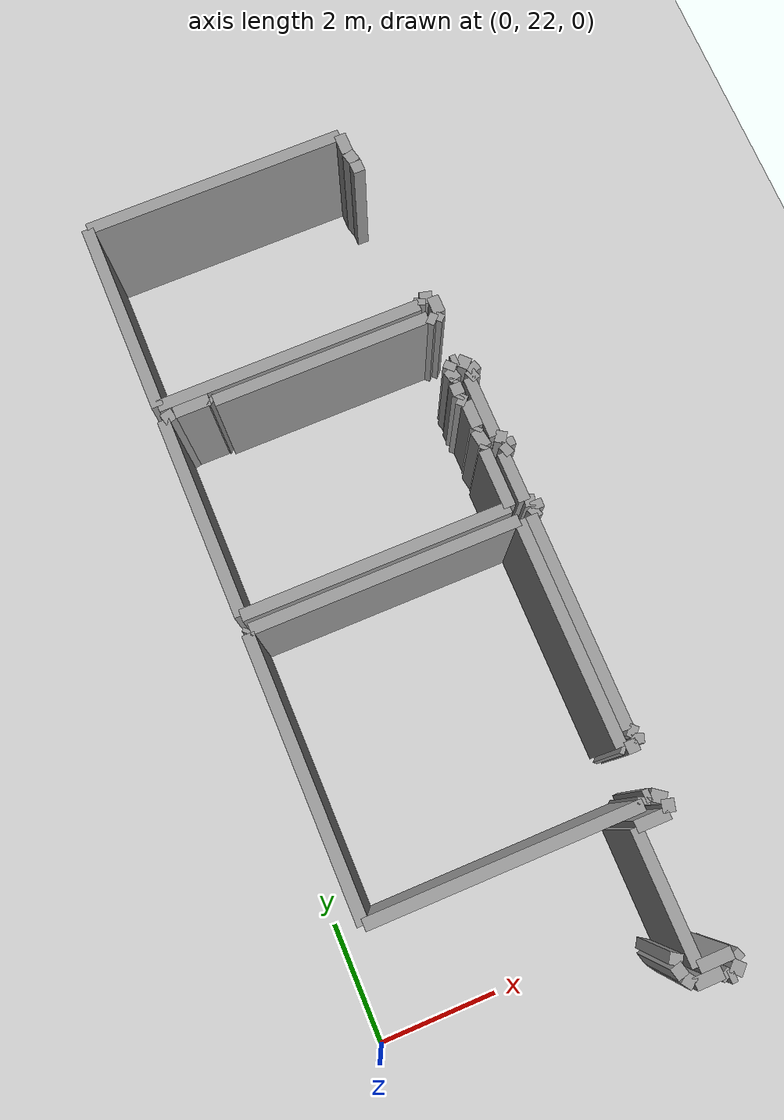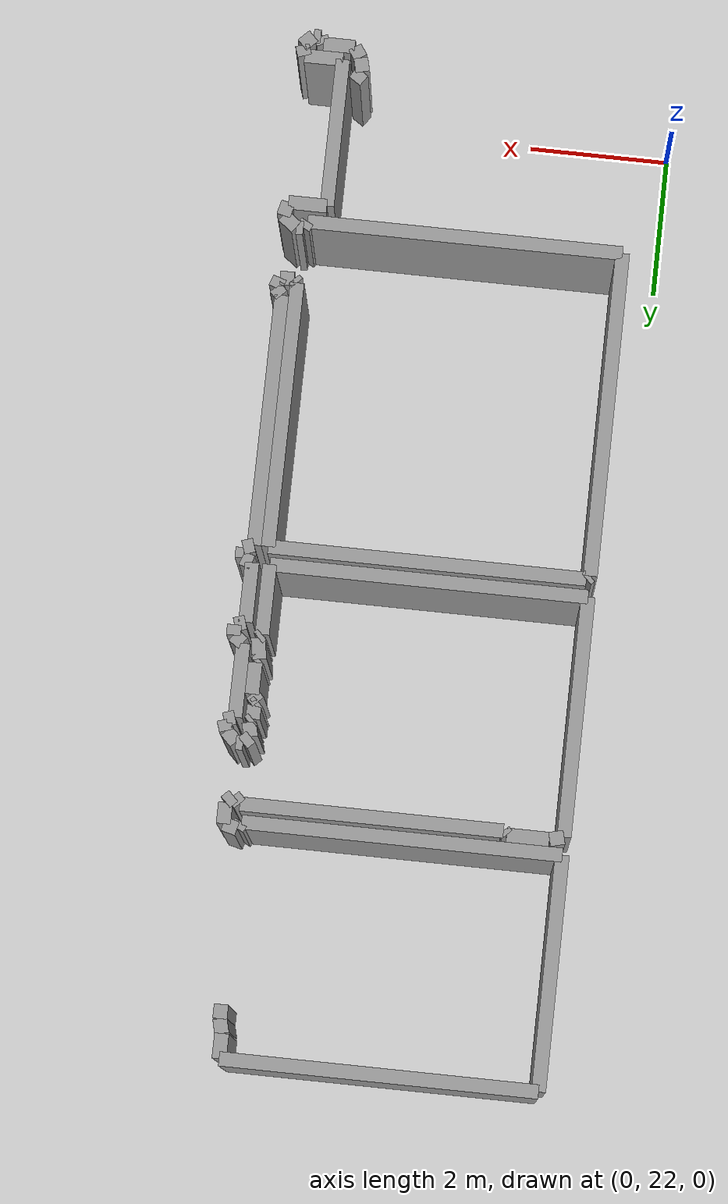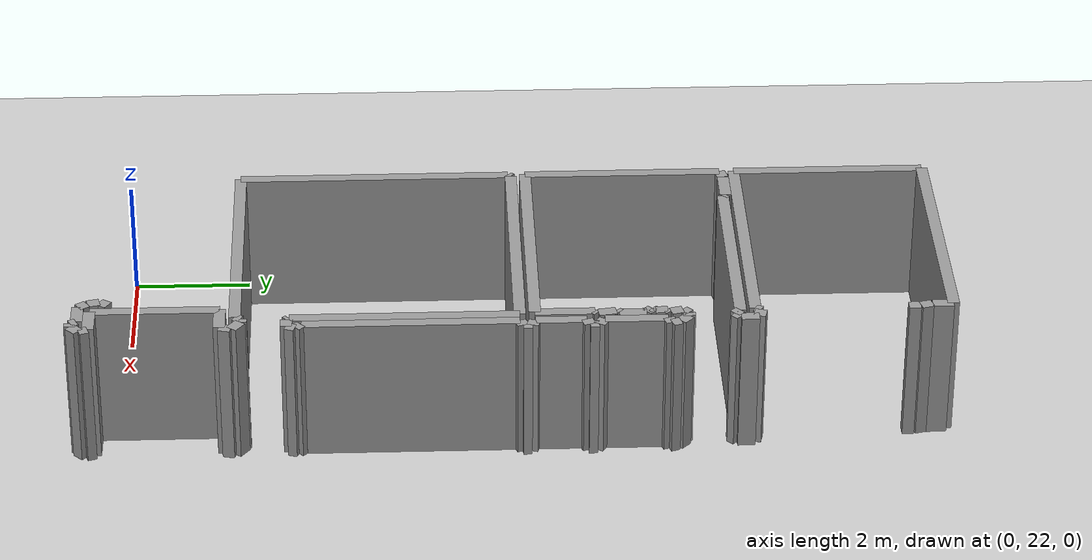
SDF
<sdf version="1.4">
 <world name="1_wall">
  <model name="ground_plane">
   <static>1</static>
   <link name="link">
    <collision name="collision">
     <geometry><plane><normal>0 0 1</normal><size>1000 1000</size></plane></geometry>
     <surface><friction><ode><mu>100</mu><mu2>50</mu2></ode></friction></surface>
    </collision>
    <visual name="visual">
     <cast_shadows>0</cast_shadows>
     <geometry><plane><normal>0 0 1</normal><size>10000 10000</size></plane></geometry>
     <material>
      <script><uri>file://media/materials/scripts/gazebo.material</uri><name>Gazebo/Grey</name></script>
     </material>
    </visual>
    <velocity_decay><linear>0</linear><angular>0</angular></velocity_decay>
   </link>
  </model>
  <model name="Wall_129">
   <static>1</static>
   <link name="Wall_129">
    <collision name="Wall_Collision_129">
     <geometry><box><size>0.180277563773 0.2 2.5</size></box></geometry>
     <pose>0 0 1.25 0 -0 0</pose>
    </collision>
    <visual name="Wall_Visual_129">
     <pose>0 0 1.25 0 -0 0</pose>
     <geometry><box><size>0.180277563773 0.2 2.5</size></box></geometry>
     <material>
      <script><uri>file://media/materials/scripts/gazebo.material</uri><name>Gazebo/Grey</name></script>
     </material>
    </visual>
    <velocity_decay><linear>0</linear><angular>0</angular></velocity_decay>
    <pose>4.55 21.775 0 0 0 -2.15879893034</pose>
   </link>
  </model>
  <model name="Wall_130">
   <static>1</static>
   <link name="Wall_130">
    <collision name="Wall_Collision_130">
     <geometry><box><size>0.206155281281 0.2 2.5</size></box></geometry>
     <pose>0 0 1.25 0 -0 0</pose>
    </collision>
    <visual name="Wall_Visual_130">
     <pose>0 0 1.25 0 -0 0</pose>
     <geometry><box><size>0.206155281281 0.2 2.5</size></box></geometry>
     <material>
      <script><uri>file://media/materials/scripts/gazebo.material</uri><name>Gazebo/Grey</name></script>
     </material>
    </visual>
    <velocity_decay><linear>0</linear><angular>0</angular></velocity_decay>
    <pose>4.525 21.6 0 0 0 -1.32581766367</pose>
   </link>
  </model>
  <model name="Wall_131">
   <static>1</static>
   <link name="Wall_131">
    <collision name="Wall_Collision_131">
     <geometry><box><size>0.180277563773 0.2 2.5</size></box></geometry>
     <pose>0 0 1.25 0 -0 0</pose>
    </collision>
    <visual name="Wall_Visual_131">
     <pose>0 0 1.25 0 -0 0</pose>
     <geometry><box><size>0.180277563773 0.2 2.5</size></box></geometry>
     <material>
      <script><uri>file://media/materials/scripts/gazebo.material</uri><name>Gazebo/Grey</name></script>
     </material>
    </visual>
    <velocity_decay><linear>0</linear><angular>0</angular></velocity_decay>
    <pose>4.6 21.425 0 0 0 -0.982793723247</pose>
   </link>
  </model>
  <model name="Wall_132">
   <static>1</static>
   <link name="Wall_132">
    <collision name="Wall_Collision_132">
     <geometry><box><size>0.45 0.2 2.5</size></box></geometry>
     <pose>0 0 1.25 0 -0 0</pose>
    </collision>
    <visual name="Wall_Visual_132">
     <pose>0 0 1.25 0 -0 0</pose>
     <geometry><box><size>0.45 0.2 2.5</size></box></geometry>
     <material>
      <script><uri>file://media/materials/scripts/gazebo.material</uri><name>Gazebo/Grey</name></script>
     </material>
    </visual>
    <velocity_decay><linear>0</linear><angular>0</angular></velocity_decay>
    <pose>4.875 21.35 0 0 0 0.0</pose>
   </link>
  </model>
  <model name="Wall_133">
   <static>1</static>
   <link name="Wall_133">
    <collision name="Wall_Collision_133">
     <geometry><box><size>0.111803398875 0.2 2.5</size></box></geometry>
     <pose>0 0 1.25 0 -0 0</pose>
    </collision>
    <visual name="Wall_Visual_133">
     <pose>0 0 1.25 0 -0 0</pose>
     <geometry><box><size>0.111803398875 0.2 2.5</size></box></geometry>
     <material>
      <script><uri>file://media/materials/scripts/gazebo.material</uri><name>Gazebo/Grey</name></script>
     </material>
    </visual>
    <velocity_decay><linear>0</linear><angular>0</angular></velocity_decay>
    <pose>5.125 21.3 0 0 0 -1.10714871779</pose>
   </link>
  </model>
  <model name="Wall_134">
   <static>1</static>
   <link name="Wall_134">
    <collision name="Wall_Collision_134">
     <geometry><box><size>0.1 0.2 2.5</size></box></geometry>
     <pose>0 0 1.25 0 -0 0</pose>
    </collision>
    <visual name="Wall_Visual_134">
     <pose>0 0 1.25 0 -0 0</pose>
     <geometry><box><size>0.1 0.2 2.5</size></box></geometry>
     <material>
      <script><uri>file://media/materials/scripts/gazebo.material</uri><name>Gazebo/Grey</name></script>
     </material>
    </visual>
    <velocity_decay><linear>0</linear><angular>0</angular></velocity_decay>
    <pose>5.2 21.25 0 0 0 0.0</pose>
   </link>
  </model>
  <model name="Wall_135">
   <static>1</static>
   <link name="Wall_135">
    <collision name="Wall_Collision_135">
     <geometry><box><size>0.212132034356 0.2 2.5</size></box></geometry>
     <pose>0 0 1.25 0 -0 0</pose>
    </collision>
    <visual name="Wall_Visual_135">
     <pose>0 0 1.25 0 -0 0</pose>
     <geometry><box><size>0.212132034356 0.2 2.5</size></box></geometry>
     <material>
      <script><uri>file://media/materials/scripts/gazebo.material</uri><name>Gazebo/Grey</name></script>
     </material>
    </visual>
    <velocity_decay><linear>0</linear><angular>0</angular></velocity_decay>
    <pose>5.325 21.325 0 0 0 0.785398163397</pose>
   </link>
  </model>
  <model name="Wall_136">
   <static>1</static>
   <link name="Wall_136">
    <collision name="Wall_Collision_136">
     <geometry><box><size>0.158113883008 0.2 2.5</size></box></geometry>
     <pose>0 0 1.25 0 -0 0</pose>
    </collision>
    <visual name="Wall_Visual_136">
     <pose>0 0 1.25 0 -0 0</pose>
     <geometry><box><size>0.158113883008 0.2 2.5</size></box></geometry>
     <material>
      <script><uri>file://media/materials/scripts/gazebo.material</uri><name>Gazebo/Grey</name></script>
     </material>
    </visual>
    <velocity_decay><linear>0</linear><angular>0</angular></velocity_decay>
    <pose>5.375 21.475 0 0 0 1.89254688119</pose>
   </link>
  </model>
  <model name="Wall_137">
   <static>1</static>
   <link name="Wall_137">
    <collision name="Wall_Collision_137">
     <geometry><box><size>0.55 0.2 2.5</size></box></geometry>
     <pose>0 0 1.25 0 -0 0</pose>
    </collision>
    <visual name="Wall_Visual_137">
     <pose>0 0 1.25 0 -0 0</pose>
     <geometry><box><size>0.55 0.2 2.5</size></box></geometry>
     <material>
      <script><uri>file://media/materials/scripts/gazebo.material</uri><name>Gazebo/Grey</name></script>
     </material>
    </visual>
    <velocity_decay><linear>0</linear><angular>0</angular></velocity_decay>
    <pose>5.075 21.55 0 0 0 3.14159265359</pose>
   </link>
  </model>
  <model name="Wall_138">
   <static>1</static>
   <link name="Wall_138">
    <collision name="Wall_Collision_138">
     <geometry><box><size>2.15 0.2 2.5</size></box></geometry>
     <pose>0 0 1.25 0 -0 0</pose>
    </collision>
    <visual name="Wall_Visual_138">
     <pose>0 0 1.25 0 -0 0</pose>
     <geometry><box><size>2.15 0.2 2.5</size></box></geometry>
     <material>
      <script><uri>file://media/materials/scripts/gazebo.material</uri><name>Gazebo/Grey</name></script>
     </material>
    </visual>
    <velocity_decay><linear>0</linear><angular>0</angular></velocity_decay>
    <pose>4.8 22.625 0 0 0 1.57079632679</pose>
   </link>
  </model>
  <model name="Wall_139">
   <static>1</static>
   <link name="Wall_139">
    <collision name="Wall_Collision_139">
     <geometry><box><size>0.55 0.2 2.5</size></box></geometry>
     <pose>0 0 1.25 0 -0 0</pose>
    </collision>
    <visual name="Wall_Visual_139">
     <pose>0 0 1.25 0 -0 0</pose>
     <geometry><box><size>0.55 0.2 2.5</size></box></geometry>
     <material>
      <script><uri>file://media/materials/scripts/gazebo.material</uri><name>Gazebo/Grey</name></script>
     </material>
    </visual>
    <velocity_decay><linear>0</linear><angular>0</angular></velocity_decay>
    <pose>5.075 23.7 0 0 0 0.0</pose>
   </link>
  </model>
  <model name="Wall_140">
   <static>1</static>
   <link name="Wall_140">
    <collision name="Wall_Collision_140">
     <geometry><box><size>0.206155281281 0.2 2.5</size></box></geometry>
     <pose>0 0 1.25 0 -0 0</pose>
    </collision>
    <visual name="Wall_Visual_140">
     <pose>0 0 1.25 0 -0 0</pose>
     <geometry><box><size>0.206155281281 0.2 2.5</size></box></geometry>
     <material>
      <script><uri>file://media/materials/scripts/gazebo.material</uri><name>Gazebo/Grey</name></script>
     </material>
    </visual>
    <velocity_decay><linear>0</linear><angular>0</angular></velocity_decay>
    <pose>5.375 23.8 0 0 0 1.32581766367</pose>
   </link>
  </model>
  <model name="Wall_141">
   <static>1</static>
   <link name="Wall_141">
    <collision name="Wall_Collision_141">
     <geometry><box><size>0.25 0.2 2.5</size></box></geometry>
     <pose>0 0 1.25 0 -0 0</pose>
    </collision>
    <visual name="Wall_Visual_141">
     <pose>0 0 1.25 0 -0 0</pose>
     <geometry><box><size>0.25 0.2 2.5</size></box></geometry>
     <material>
      <script><uri>file://media/materials/scripts/gazebo.material</uri><name>Gazebo/Grey</name></script>
     </material>
    </visual>
    <velocity_decay><linear>0</linear><angular>0</angular></velocity_decay>
    <pose>5.3 23.975 0 0 0 2.4980915448</pose>
   </link>
  </model>
  <model name="Wall_142">
   <static>1</static>
   <link name="Wall_142">
    <collision name="Wall_Collision_142">
     <geometry><box><size>0.1 0.2 2.5</size></box></geometry>
     <pose>0 0 1.25 0 -0 0</pose>
    </collision>
    <visual name="Wall_Visual_142">
     <pose>0 0 1.25 0 -0 0</pose>
     <geometry><box><size>0.1 0.2 2.5</size></box></geometry>
     <material>
      <script><uri>file://media/materials/scripts/gazebo.material</uri><name>Gazebo/Grey</name></script>
     </material>
    </visual>
    <velocity_decay><linear>0</linear><angular>0</angular></velocity_decay>
    <pose>5.15 24.05 0 0 0 3.14159265359</pose>
   </link>
  </model>
  <model name="Wall_143">
   <static>1</static>
   <link name="Wall_143">
    <collision name="Wall_Collision_143">
     <geometry><box><size>0.111803398875 0.2 2.5</size></box></geometry>
     <pose>0 0 1.25 0 -0 0</pose>
    </collision>
    <visual name="Wall_Visual_143">
     <pose>0 0 1.25 0 -0 0</pose>
     <geometry><box><size>0.111803398875 0.2 2.5</size></box></geometry>
     <material>
      <script><uri>file://media/materials/scripts/gazebo.material</uri><name>Gazebo/Grey</name></script>
     </material>
    </visual>
    <velocity_decay><linear>0</linear><angular>0</angular></velocity_decay>
    <pose>5.075 24.0 0 0 0 -2.0344439358</pose>
   </link>
  </model>
  <model name="Wall_144">
   <static>1</static>
   <link name="Wall_144">
    <collision name="Wall_Collision_144">
     <geometry><box><size>4.5 0.2 2.5</size></box></geometry>
     <pose>0 0 1.25 0 -0 0</pose>
    </collision>
    <visual name="Wall_Visual_144">
     <pose>0 0 1.25 0 -0 0</pose>
     <geometry><box><size>4.5 0.2 2.5</size></box></geometry>
     <material>
      <script><uri>file://media/materials/scripts/gazebo.material</uri><name>Gazebo/Grey</name></script>
     </material>
    </visual>
    <velocity_decay><linear>0</linear><angular>0</angular></velocity_decay>
    <pose>2.8 23.95 0 0 0 3.14159265359</pose>
   </link>
  </model>
  <model name="Wall_145">
   <static>1</static>
   <link name="Wall_145">
    <collision name="Wall_Collision_145">
     <geometry><box><size>4.65 0.2 2.5</size></box></geometry>
     <pose>0 0 1.25 0 -0 0</pose>
    </collision>
    <visual name="Wall_Visual_145">
     <pose>0 0 1.25 0 -0 0</pose>
     <geometry><box><size>4.65 0.2 2.5</size></box></geometry>
     <material>
      <script><uri>file://media/materials/scripts/gazebo.material</uri><name>Gazebo/Grey</name></script>
     </material>
    </visual>
    <velocity_decay><linear>0</linear><angular>0</angular></velocity_decay>
    <pose>0.55 26.275 0 0 0 1.57079632679</pose>
   </link>
  </model>
  <model name="Wall_146">
   <static>1</static>
   <link name="Wall_146">
    <collision name="Wall_Collision_146">
     <geometry><box><size>0.0707106781187 0.2 2.5</size></box></geometry>
     <pose>0 0 1.25 0 -0 0</pose>
    </collision>
    <visual name="Wall_Visual_146">
     <pose>0 0 1.25 0 -0 0</pose>
     <geometry><box><size>0.0707106781187 0.2 2.5</size></box></geometry>
     <material>
      <script><uri>file://media/materials/scripts/gazebo.material</uri><name>Gazebo/Grey</name></script>
     </material>
    </visual>
    <velocity_decay><linear>0</linear><angular>0</angular></velocity_decay>
    <pose>0.575 28.625 0 0 0 0.785398163397</pose>
   </link>
  </model>
  <model name="Wall_147">
   <static>1</static>
   <link name="Wall_147">
    <collision name="Wall_Collision_147">
     <geometry><box><size>4.5 0.2 2.5</size></box></geometry>
     <pose>0 0 1.25 0 -0 0</pose>
    </collision>
    <visual name="Wall_Visual_147">
     <pose>0 0 1.25 0 -0 0</pose>
     <geometry><box><size>4.5 0.2 2.5</size></box></geometry>
     <material>
      <script><uri>file://media/materials/scripts/gazebo.material</uri><name>Gazebo/Grey</name></script>
     </material>
    </visual>
    <velocity_decay><linear>0</linear><angular>0</angular></velocity_decay>
    <pose>2.85 28.65 0 0 0 0.0</pose>
   </link>
  </model>
  <model name="Wall_148">
   <static>1</static>
   <link name="Wall_148">
    <collision name="Wall_Collision_148">
     <geometry><box><size>3.8 0.2 2.5</size></box></geometry>
     <pose>0 0 1.25 0 -0 0</pose>
    </collision>
    <visual name="Wall_Visual_148">
     <pose>0 0 1.25 0 -0 0</pose>
     <geometry><box><size>3.8 0.2 2.5</size></box></geometry>
     <material>
      <script><uri>file://media/materials/scripts/gazebo.material</uri><name>Gazebo/Grey</name></script>
     </material>
    </visual>
    <velocity_decay><linear>0</linear><angular>0</angular></velocity_decay>
    <pose>5.1 26.75 0 0 0 -1.57079632679</pose>
   </link>
  </model>
  <model name="Wall_149">
   <static>1</static>
   <link name="Wall_149">
    <collision name="Wall_Collision_149">
     <geometry><box><size>0.0707106781187 0.2 2.5</size></box></geometry>
     <pose>0 0 1.25 0 -0 0</pose>
    </collision>
    <visual name="Wall_Visual_149">
     <pose>0 0 1.25 0 -0 0</pose>
     <geometry><box><size>0.0707106781187 0.2 2.5</size></box></geometry>
     <material>
      <script><uri>file://media/materials/scripts/gazebo.material</uri><name>Gazebo/Grey</name></script>
     </material>
    </visual>
    <velocity_decay><linear>0</linear><angular>0</angular></velocity_decay>
    <pose>5.125 24.825 0 0 0 -0.785398163397</pose>
   </link>
  </model>
  <model name="Wall_150">
   <static>1</static>
   <link name="Wall_150">
    <collision name="Wall_Collision_150">
     <geometry><box><size>0.2 0.2 2.5</size></box></geometry>
     <pose>0 0 1.25 0 -0 0</pose>
    </collision>
    <visual name="Wall_Visual_150">
     <pose>0 0 1.25 0 -0 0</pose>
     <geometry><box><size>0.2 0.2 2.5</size></box></geometry>
     <material>
      <script><uri>file://media/materials/scripts/gazebo.material</uri><name>Gazebo/Grey</name></script>
     </material>
    </visual>
    <velocity_decay><linear>0</linear><angular>0</angular></velocity_decay>
    <pose>5.25 24.8 0 0 0 0.0</pose>
   </link>
  </model>
  <model name="Wall_151">
   <static>1</static>
   <link name="Wall_151">
    <collision name="Wall_Collision_151">
     <geometry><box><size>0.158113883008 0.2 2.5</size></box></geometry>
     <pose>0 0 1.25 0 -0 0</pose>
    </collision>
    <visual name="Wall_Visual_151">
     <pose>0 0 1.25 0 -0 0</pose>
     <geometry><box><size>0.158113883008 0.2 2.5</size></box></geometry>
     <material>
      <script><uri>file://media/materials/scripts/gazebo.material</uri><name>Gazebo/Grey</name></script>
     </material>
    </visual>
    <velocity_decay><linear>0</linear><angular>0</angular></velocity_decay>
    <pose>5.375 24.875 0 0 0 1.2490457724</pose>
   </link>
  </model>
  <model name="Wall_152">
   <static>1</static>
   <link name="Wall_152">
    <collision name="Wall_Collision_152">
     <geometry><box><size>0.141421356237 0.2 2.5</size></box></geometry>
     <pose>0 0 1.25 0 -0 0</pose>
    </collision>
    <visual name="Wall_Visual_152">
     <pose>0 0 1.25 0 -0 0</pose>
     <geometry><box><size>0.141421356237 0.2 2.5</size></box></geometry>
     <material>
      <script><uri>file://media/materials/scripts/gazebo.material</uri><name>Gazebo/Grey</name></script>
     </material>
    </visual>
    <velocity_decay><linear>0</linear><angular>0</angular></velocity_decay>
    <pose>5.35 25.0 0 0 0 2.35619449019</pose>
   </link>
  </model>
  <model name="Wall_153">
   <static>1</static>
   <link name="Wall_153">
    <collision name="Wall_Collision_153">
     <geometry><box><size>3.6 0.2 2.5</size></box></geometry>
     <pose>0 0 1.25 0 -0 0</pose>
    </collision>
    <visual name="Wall_Visual_153">
     <pose>0 0 1.25 0 -0 0</pose>
     <geometry><box><size>3.6 0.2 2.5</size></box></geometry>
     <material>
      <script><uri>file://media/materials/scripts/gazebo.material</uri><name>Gazebo/Grey</name></script>
     </material>
    </visual>
    <velocity_decay><linear>0</linear><angular>0</angular></velocity_decay>
    <pose>5.3 26.85 0 0 0 1.57079632679</pose>
   </link>
  </model>
  <model name="Wall_154">
   <static>1</static>
   <link name="Wall_154">
    <collision name="Wall_Collision_154">
     <geometry><box><size>0.158113883008 0.2 2.5</size></box></geometry>
     <pose>0 0 1.25 0 -0 0</pose>
    </collision>
    <visual name="Wall_Visual_154">
     <pose>0 0 1.25 0 -0 0</pose>
     <geometry><box><size>0.158113883008 0.2 2.5</size></box></geometry>
     <material>
      <script><uri>file://media/materials/scripts/gazebo.material</uri><name>Gazebo/Grey</name></script>
     </material>
    </visual>
    <velocity_decay><linear>0</linear><angular>0</angular></velocity_decay>
    <pose>5.375 28.675 0 0 0 0.321750554397</pose>
   </link>
  </model>
  <model name="Wall_155">
   <static>1</static>
   <link name="Wall_155">
    <collision name="Wall_Collision_155">
     <geometry><box><size>0.15 0.2 2.5</size></box></geometry>
     <pose>0 0 1.25 0 -0 0</pose>
    </collision>
    <visual name="Wall_Visual_155">
     <pose>0 0 1.25 0 -0 0</pose>
     <geometry><box><size>0.15 0.2 2.5</size></box></geometry>
     <material>
      <script><uri>file://media/materials/scripts/gazebo.material</uri><name>Gazebo/Grey</name></script>
     </material>
    </visual>
    <velocity_decay><linear>0</linear><angular>0</angular></velocity_decay>
    <pose>5.45 28.775 0 0 0 1.57079632679</pose>
   </link>
  </model>
  <model name="Wall_156">
   <static>1</static>
   <link name="Wall_156">
    <collision name="Wall_Collision_156">
     <geometry><box><size>0.158113883008 0.2 2.5</size></box></geometry>
     <pose>0 0 1.25 0 -0 0</pose>
    </collision>
    <visual name="Wall_Visual_156">
     <pose>0 0 1.25 0 -0 0</pose>
     <geometry><box><size>0.158113883008 0.2 2.5</size></box></geometry>
     <material>
      <script><uri>file://media/materials/scripts/gazebo.material</uri><name>Gazebo/Grey</name></script>
     </material>
    </visual>
    <velocity_decay><linear>0</linear><angular>0</angular></velocity_decay>
    <pose>5.375 28.875 0 0 0 2.81984209919</pose>
   </link>
  </model>
  <model name="Wall_157">
   <static>1</static>
   <link name="Wall_157">
    <collision name="Wall_Collision_157">
     <geometry><box><size>0.85 0.2 2.5</size></box></geometry>
     <pose>0 0 1.25 0 -0 0</pose>
    </collision>
    <visual name="Wall_Visual_157">
     <pose>0 0 1.25 0 -0 0</pose>
     <geometry><box><size>0.85 0.2 2.5</size></box></geometry>
     <material>
      <script><uri>file://media/materials/scripts/gazebo.material</uri><name>Gazebo/Grey</name></script>
     </material>
    </visual>
    <velocity_decay><linear>0</linear><angular>0</angular></velocity_decay>
    <pose>5.3 29.325 0 0 0 1.57079632679</pose>
   </link>
  </model>
  <model name="Wall_158">
   <static>1</static>
   <link name="Wall_158">
    <collision name="Wall_Collision_158">
     <geometry><box><size>0.158113883008 0.2 2.5</size></box></geometry>
     <pose>0 0 1.25 0 -0 0</pose>
    </collision>
    <visual name="Wall_Visual_158">
     <pose>0 0 1.25 0 -0 0</pose>
     <geometry><box><size>0.158113883008 0.2 2.5</size></box></geometry>
     <material>
      <script><uri>file://media/materials/scripts/gazebo.material</uri><name>Gazebo/Grey</name></script>
     </material>
    </visual>
    <velocity_decay><linear>0</linear><angular>0</angular></velocity_decay>
    <pose>5.375 29.775 0 0 0 0.321750554397</pose>
   </link>
  </model>
  <model name="Wall_159">
   <static>1</static>
   <link name="Wall_159">
    <collision name="Wall_Collision_159">
     <geometry><box><size>0.15 0.2 2.5</size></box></geometry>
     <pose>0 0 1.25 0 -0 0</pose>
    </collision>
    <visual name="Wall_Visual_159">
     <pose>0 0 1.25 0 -0 0</pose>
     <geometry><box><size>0.15 0.2 2.5</size></box></geometry>
     <material>
      <script><uri>file://media/materials/scripts/gazebo.material</uri><name>Gazebo/Grey</name></script>
     </material>
    </visual>
    <velocity_decay><linear>0</linear><angular>0</angular></velocity_decay>
    <pose>5.45 29.875 0 0 0 1.57079632679</pose>
   </link>
  </model>
  <model name="Wall_160">
   <static>1</static>
   <link name="Wall_160">
    <collision name="Wall_Collision_160">
     <geometry><box><size>0.180277563773 0.2 2.5</size></box></geometry>
     <pose>0 0 1.25 0 -0 0</pose>
    </collision>
    <visual name="Wall_Visual_160">
     <pose>0 0 1.25 0 -0 0</pose>
     <geometry><box><size>0.180277563773 0.2 2.5</size></box></geometry>
     <material>
      <script><uri>file://media/materials/scripts/gazebo.material</uri><name>Gazebo/Grey</name></script>
     </material>
    </visual>
    <velocity_decay><linear>0</linear><angular>0</angular></velocity_decay>
    <pose>5.375 30.0 0 0 0 2.55359005004</pose>
   </link>
  </model>
  <model name="Wall_161">
   <static>1</static>
   <link name="Wall_161">
    <collision name="Wall_Collision_161">
     <geometry><box><size>1.05 0.2 2.5</size></box></geometry>
     <pose>0 0 1.25 0 -0 0</pose>
    </collision>
    <visual name="Wall_Visual_161">
     <pose>0 0 1.25 0 -0 0</pose>
     <geometry><box><size>1.05 0.2 2.5</size></box></geometry>
     <material>
      <script><uri>file://media/materials/scripts/gazebo.material</uri><name>Gazebo/Grey</name></script>
     </material>
    </visual>
    <velocity_decay><linear>0</linear><angular>0</angular></velocity_decay>
    <pose>5.3 30.575 0 0 0 1.57079632679</pose>
   </link>
  </model>
  <model name="Wall_162">
   <static>1</static>
   <link name="Wall_162">
    <collision name="Wall_Collision_162">
     <geometry><box><size>0.158113883008 0.2 2.5</size></box></geometry>
     <pose>0 0 1.25 0 -0 0</pose>
    </collision>
    <visual name="Wall_Visual_162">
     <pose>0 0 1.25 0 -0 0</pose>
     <geometry><box><size>0.158113883008 0.2 2.5</size></box></geometry>
     <material>
      <script><uri>file://media/materials/scripts/gazebo.material</uri><name>Gazebo/Grey</name></script>
     </material>
    </visual>
    <velocity_decay><linear>0</linear><angular>0</angular></velocity_decay>
    <pose>5.375 31.125 0 0 0 0.321750554397</pose>
   </link>
  </model>
  <model name="Wall_163">
   <static>1</static>
   <link name="Wall_163">
    <collision name="Wall_Collision_163">
     <geometry><box><size>0.158113883008 0.2 2.5</size></box></geometry>
     <pose>0 0 1.25 0 -0 0</pose>
    </collision>
    <visual name="Wall_Visual_163">
     <pose>0 0 1.25 0 -0 0</pose>
     <geometry><box><size>0.158113883008 0.2 2.5</size></box></geometry>
     <material>
      <script><uri>file://media/materials/scripts/gazebo.material</uri><name>Gazebo/Grey</name></script>
     </material>
    </visual>
    <velocity_decay><linear>0</linear><angular>0</angular></velocity_decay>
    <pose>5.425 31.225 0 0 0 1.89254688119</pose>
   </link>
  </model>
  <model name="Wall_164">
   <static>1</static>
   <link name="Wall_164">
    <collision name="Wall_Collision_164">
     <geometry><box><size>0.212132034356 0.2 2.5</size></box></geometry>
     <pose>0 0 1.25 0 -0 0</pose>
    </collision>
    <visual name="Wall_Visual_164">
     <pose>0 0 1.25 0 -0 0</pose>
     <geometry><box><size>0.212132034356 0.2 2.5</size></box></geometry>
     <material>
      <script><uri>file://media/materials/scripts/gazebo.material</uri><name>Gazebo/Grey</name></script>
     </material>
    </visual>
    <velocity_decay><linear>0</linear><angular>0</angular></velocity_decay>
    <pose>5.325 31.375 0 0 0 2.35619449019</pose>
   </link>
  </model>
  <model name="Wall_165">
   <static>1</static>
   <link name="Wall_165">
    <collision name="Wall_Collision_165">
     <geometry><box><size>0.1 0.2 2.5</size></box></geometry>
     <pose>0 0 1.25 0 -0 0</pose>
    </collision>
    <visual name="Wall_Visual_165">
     <pose>0 0 1.25 0 -0 0</pose>
     <geometry><box><size>0.1 0.2 2.5</size></box></geometry>
     <material>
      <script><uri>file://media/materials/scripts/gazebo.material</uri><name>Gazebo/Grey</name></script>
     </material>
    </visual>
    <velocity_decay><linear>0</linear><angular>0</angular></velocity_decay>
    <pose>5.2 31.45 0 0 0 3.14159265359</pose>
   </link>
  </model>
  <model name="Wall_166">
   <static>1</static>
   <link name="Wall_166">
    <collision name="Wall_Collision_166">
     <geometry><box><size>0.141421356237 0.2 2.5</size></box></geometry>
     <pose>0 0 1.25 0 -0 0</pose>
    </collision>
    <visual name="Wall_Visual_166">
     <pose>0 0 1.25 0 -0 0</pose>
     <geometry><box><size>0.141421356237 0.2 2.5</size></box></geometry>
     <material>
      <script><uri>file://media/materials/scripts/gazebo.material</uri><name>Gazebo/Grey</name></script>
     </material>
    </visual>
    <velocity_decay><linear>0</linear><angular>0</angular></velocity_decay>
    <pose>5.1 31.4 0 0 0 -2.35619449019</pose>
   </link>
  </model>
  <model name="Wall_167">
   <static>1</static>
   <link name="Wall_167">
    <collision name="Wall_Collision_167">
     <geometry><box><size>0.206155281281 0.2 2.5</size></box></geometry>
     <pose>0 0 1.25 0 -0 0</pose>
    </collision>
    <visual name="Wall_Visual_167">
     <pose>0 0 1.25 0 -0 0</pose>
     <geometry><box><size>0.206155281281 0.2 2.5</size></box></geometry>
     <material>
      <script><uri>file://media/materials/scripts/gazebo.material</uri><name>Gazebo/Grey</name></script>
     </material>
    </visual>
    <velocity_decay><linear>0</linear><angular>0</angular></velocity_decay>
    <pose>5.075 31.25 0 0 0 -1.32581766367</pose>
   </link>
  </model>
  <model name="Wall_168">
   <static>1</static>
   <link name="Wall_168">
    <collision name="Wall_Collision_168">
     <geometry><box><size>0.0707106781187 0.2 2.5</size></box></geometry>
     <pose>0 0 1.25 0 -0 0</pose>
    </collision>
    <visual name="Wall_Visual_168">
     <pose>0 0 1.25 0 -0 0</pose>
     <geometry><box><size>0.0707106781187 0.2 2.5</size></box></geometry>
     <material>
      <script><uri>file://media/materials/scripts/gazebo.material</uri><name>Gazebo/Grey</name></script>
     </material>
    </visual>
    <velocity_decay><linear>0</linear><angular>0</angular></velocity_decay>
    <pose>5.075 31.125 0 0 0 -2.35619449019</pose>
   </link>
  </model>
  <model name="Wall_169">
   <static>1</static>
   <link name="Wall_169">
    <collision name="Wall_Collision_169">
     <geometry><box><size>0.2 0.2 2.5</size></box></geometry>
     <pose>0 0 1.25 0 -0 0</pose>
    </collision>
    <visual name="Wall_Visual_169">
     <pose>0 0 1.25 0 -0 0</pose>
     <geometry><box><size>0.2 0.2 2.5</size></box></geometry>
     <material>
      <script><uri>file://media/materials/scripts/gazebo.material</uri><name>Gazebo/Grey</name></script>
     </material>
    </visual>
    <velocity_decay><linear>0</linear><angular>0</angular></velocity_decay>
    <pose>5.05 31.0 0 0 0 -1.57079632679</pose>
   </link>
  </model>
  <model name="Wall_170">
   <static>1</static>
   <link name="Wall_170">
    <collision name="Wall_Collision_170">
     <geometry><box><size>0.0707106781187 0.2 2.5</size></box></geometry>
     <pose>0 0 1.25 0 -0 0</pose>
    </collision>
    <visual name="Wall_Visual_170">
     <pose>0 0 1.25 0 -0 0</pose>
     <geometry><box><size>0.0707106781187 0.2 2.5</size></box></geometry>
     <material>
      <script><uri>file://media/materials/scripts/gazebo.material</uri><name>Gazebo/Grey</name></script>
     </material>
    </visual>
    <velocity_decay><linear>0</linear><angular>0</angular></velocity_decay>
    <pose>5.025 30.875 0 0 0 -2.35619449019</pose>
   </link>
  </model>
  <model name="Wall_171">
   <static>1</static>
   <link name="Wall_171">
    <collision name="Wall_Collision_171">
     <geometry><box><size>0.141421356237 0.2 2.5</size></box></geometry>
     <pose>0 0 1.25 0 -0 0</pose>
    </collision>
    <visual name="Wall_Visual_171">
     <pose>0 0 1.25 0 -0 0</pose>
     <geometry><box><size>0.141421356237 0.2 2.5</size></box></geometry>
     <material>
      <script><uri>file://media/materials/scripts/gazebo.material</uri><name>Gazebo/Grey</name></script>
     </material>
    </visual>
    <velocity_decay><linear>0</linear><angular>0</angular></velocity_decay>
    <pose>5.05 30.8 0 0 0 -0.785398163397</pose>
   </link>
  </model>
  <model name="Wall_172">
   <static>1</static>
   <link name="Wall_172">
    <collision name="Wall_Collision_172">
     <geometry><box><size>0.45 0.2 2.5</size></box></geometry>
     <pose>0 0 1.25 0 -0 0</pose>
    </collision>
    <visual name="Wall_Visual_172">
     <pose>0 0 1.25 0 -0 0</pose>
     <geometry><box><size>0.45 0.2 2.5</size></box></geometry>
     <material>
      <script><uri>file://media/materials/scripts/gazebo.material</uri><name>Gazebo/Grey</name></script>
     </material>
    </visual>
    <velocity_decay><linear>0</linear><angular>0</angular></velocity_decay>
    <pose>5.1 30.525 0 0 0 -1.57079632679</pose>
   </link>
  </model>
  <model name="Wall_173">
   <static>1</static>
   <link name="Wall_173">
    <collision name="Wall_Collision_173">
     <geometry><box><size>0.0707106781187 0.2 2.5</size></box></geometry>
     <pose>0 0 1.25 0 -0 0</pose>
    </collision>
    <visual name="Wall_Visual_173">
     <pose>0 0 1.25 0 -0 0</pose>
     <geometry><box><size>0.0707106781187 0.2 2.5</size></box></geometry>
     <material>
      <script><uri>file://media/materials/scripts/gazebo.material</uri><name>Gazebo/Grey</name></script>
     </material>
    </visual>
    <velocity_decay><linear>0</linear><angular>0</angular></velocity_decay>
    <pose>5.075 30.275 0 0 0 -2.35619449019</pose>
   </link>
  </model>
  <model name="Wall_174">
   <static>1</static>
   <link name="Wall_174">
    <collision name="Wall_Collision_174">
     <geometry><box><size>0.304138126515 0.2 2.5</size></box></geometry>
     <pose>0 0 1.25 0 -0 0</pose>
    </collision>
    <visual name="Wall_Visual_174">
     <pose>0 0 1.25 0 -0 0</pose>
     <geometry><box><size>0.304138126515 0.2 2.5</size></box></geometry>
     <material>
      <script><uri>file://media/materials/scripts/gazebo.material</uri><name>Gazebo/Grey</name></script>
     </material>
    </visual>
    <velocity_decay><linear>0</linear><angular>0</angular></velocity_decay>
    <pose>5.075 30.1 0 0 0 -1.40564764938</pose>
   </link>
  </model>
  <model name="Wall_175">
   <static>1</static>
   <link name="Wall_175">
    <collision name="Wall_Collision_175">
     <geometry><box><size>0.0707106781187 0.2 2.5</size></box></geometry>
     <pose>0 0 1.25 0 -0 0</pose>
    </collision>
    <visual name="Wall_Visual_175">
     <pose>0 0 1.25 0 -0 0</pose>
     <geometry><box><size>0.0707106781187 0.2 2.5</size></box></geometry>
     <material>
      <script><uri>file://media/materials/scripts/gazebo.material</uri><name>Gazebo/Grey</name></script>
     </material>
    </visual>
    <velocity_decay><linear>0</linear><angular>0</angular></velocity_decay>
    <pose>5.075 29.925 0 0 0 -2.35619449019</pose>
   </link>
  </model>
  <model name="Wall_176">
   <static>1</static>
   <link name="Wall_176">
    <collision name="Wall_Collision_176">
     <geometry><box><size>1.0 0.2 2.5</size></box></geometry>
     <pose>0 0 1.25 0 -0 0</pose>
    </collision>
    <visual name="Wall_Visual_176">
     <pose>0 0 1.25 0 -0 0</pose>
     <geometry><box><size>1.0 0.2 2.5</size></box></geometry>
     <material>
      <script><uri>file://media/materials/scripts/gazebo.material</uri><name>Gazebo/Grey</name></script>
     </material>
    </visual>
    <velocity_decay><linear>0</linear><angular>0</angular></velocity_decay>
    <pose>5.05 29.4 0 0 0 -1.57079632679</pose>
   </link>
  </model>
  <model name="Wall_177">
   <static>1</static>
   <link name="Wall_177">
    <collision name="Wall_Collision_177">
     <geometry><box><size>4.5 0.2 2.5</size></box></geometry>
     <pose>0 0 1.25 0 -0 0</pose>
    </collision>
    <visual name="Wall_Visual_177">
     <pose>0 0 1.25 0 -0 0</pose>
     <geometry><box><size>4.5 0.2 2.5</size></box></geometry>
     <material>
      <script><uri>file://media/materials/scripts/gazebo.material</uri><name>Gazebo/Grey</name></script>
     </material>
    </visual>
    <velocity_decay><linear>0</linear><angular>0</angular></velocity_decay>
    <pose>2.8 28.9 0 0 0 3.14159265359</pose>
   </link>
  </model>
  <model name="Wall_178">
   <static>1</static>
   <link name="Wall_178">
    <collision name="Wall_Collision_178">
     <geometry><box><size>3.4 0.2 2.5</size></box></geometry>
     <pose>0 0 1.25 0 -0 0</pose>
    </collision>
    <visual name="Wall_Visual_178">
     <pose>0 0 1.25 0 -0 0</pose>
     <geometry><box><size>3.4 0.2 2.5</size></box></geometry>
     <material>
      <script><uri>file://media/materials/scripts/gazebo.material</uri><name>Gazebo/Grey</name></script>
     </material>
    </visual>
    <velocity_decay><linear>0</linear><angular>0</angular></velocity_decay>
    <pose>0.55 30.6 0 0 0 1.57079632679</pose>
   </link>
  </model>
  <model name="Wall_179">
   <static>1</static>
   <link name="Wall_179">
    <collision name="Wall_Collision_179">
     <geometry><box><size>0.206155281281 0.2 2.5</size></box></geometry>
     <pose>0 0 1.25 0 -0 0</pose>
    </collision>
    <visual name="Wall_Visual_179">
     <pose>0 0 1.25 0 -0 0</pose>
     <geometry><box><size>0.206155281281 0.2 2.5</size></box></geometry>
     <material>
      <script><uri>file://media/materials/scripts/gazebo.material</uri><name>Gazebo/Grey</name></script>
     </material>
    </visual>
    <velocity_decay><linear>0</linear><angular>0</angular></velocity_decay>
    <pose>0.65 32.325 0 0 0 0.244978663127</pose>
   </link>
  </model>
  <model name="Wall_180">
   <static>1</static>
   <link name="Wall_180">
    <collision name="Wall_Collision_180">
     <geometry><box><size>0.6 0.2 2.5</size></box></geometry>
     <pose>0 0 1.25 0 -0 0</pose>
    </collision>
    <visual name="Wall_Visual_180">
     <pose>0 0 1.25 0 -0 0</pose>
     <geometry><box><size>0.6 0.2 2.5</size></box></geometry>
     <material>
      <script><uri>file://media/materials/scripts/gazebo.material</uri><name>Gazebo/Grey</name></script>
     </material>
    </visual>
    <velocity_decay><linear>0</linear><angular>0</angular></velocity_decay>
    <pose>1.05 32.35 0 0 0 0.0</pose>
   </link>
  </model>
  <model name="Wall_181">
   <static>1</static>
   <link name="Wall_181">
    <collision name="Wall_Collision_181">
     <geometry><box><size>0.0707106781187 0.2 2.5</size></box></geometry>
     <pose>0 0 1.25 0 -0 0</pose>
    </collision>
    <visual name="Wall_Visual_181">
     <pose>0 0 1.25 0 -0 0</pose>
     <geometry><box><size>0.0707106781187 0.2 2.5</size></box></geometry>
     <material>
      <script><uri>file://media/materials/scripts/gazebo.material</uri><name>Gazebo/Grey</name></script>
     </material>
    </visual>
    <velocity_decay><linear>0</linear><angular>0</angular></velocity_decay>
    <pose>1.375 32.325 0 0 0 -0.785398163397</pose>
   </link>
  </model>
  <model name="Wall_182">
   <static>1</static>
   <link name="Wall_182">
    <collision name="Wall_Collision_182">
     <geometry><box><size>3.7 0.2 2.5</size></box></geometry>
     <pose>0 0 1.25 0 -0 0</pose>
    </collision>
    <visual name="Wall_Visual_182">
     <pose>0 0 1.25 0 -0 0</pose>
     <geometry><box><size>3.7 0.2 2.5</size></box></geometry>
     <material>
      <script><uri>file://media/materials/scripts/gazebo.material</uri><name>Gazebo/Grey</name></script>
     </material>
    </visual>
    <velocity_decay><linear>0</linear><angular>0</angular></velocity_decay>
    <pose>3.25 32.3 0 0 0 0.0</pose>
   </link>
  </model>
  <model name="Wall_183">
   <static>1</static>
   <link name="Wall_183">
    <collision name="Wall_Collision_183">
     <geometry><box><size>0.141421356237 0.2 2.5</size></box></geometry>
     <pose>0 0 1.25 0 -0 0</pose>
    </collision>
    <visual name="Wall_Visual_183">
     <pose>0 0 1.25 0 -0 0</pose>
     <geometry><box><size>0.141421356237 0.2 2.5</size></box></geometry>
     <material>
      <script><uri>file://media/materials/scripts/gazebo.material</uri><name>Gazebo/Grey</name></script>
     </material>
    </visual>
    <velocity_decay><linear>0</linear><angular>0</angular></velocity_decay>
    <pose>5.15 32.25 0 0 0 -0.785398163397</pose>
   </link>
  </model>
  <model name="Wall_184">
   <static>1</static>
   <link name="Wall_184">
    <collision name="Wall_Collision_184">
     <geometry><box><size>0.141421356237 0.2 2.5</size></box></geometry>
     <pose>0 0 1.25 0 -0 0</pose>
    </collision>
    <visual name="Wall_Visual_184">
     <pose>0 0 1.25 0 -0 0</pose>
     <geometry><box><size>0.141421356237 0.2 2.5</size></box></geometry>
     <material>
      <script><uri>file://media/materials/scripts/gazebo.material</uri><name>Gazebo/Grey</name></script>
     </material>
    </visual>
    <velocity_decay><linear>0</linear><angular>0</angular></velocity_decay>
    <pose>5.25 32.25 0 0 0 0.785398163397</pose>
   </link>
  </model>
  <model name="Wall_185">
   <static>1</static>
   <link name="Wall_185">
    <collision name="Wall_Collision_185">
     <geometry><box><size>0.3 0.2 2.5</size></box></geometry>
     <pose>0 0 1.25 0 -0 0</pose>
    </collision>
    <visual name="Wall_Visual_185">
     <pose>0 0 1.25 0 -0 0</pose>
     <geometry><box><size>0.3 0.2 2.5</size></box></geometry>
     <material>
      <script><uri>file://media/materials/scripts/gazebo.material</uri><name>Gazebo/Grey</name></script>
     </material>
    </visual>
    <velocity_decay><linear>0</linear><angular>0</angular></velocity_decay>
    <pose>5.3 32.45 0 0 0 1.57079632679</pose>
   </link>
  </model>
  <model name="Wall_186">
   <static>1</static>
   <link name="Wall_186">
    <collision name="Wall_Collision_186">
     <geometry><box><size>0.206155281281 0.2 2.5</size></box></geometry>
     <pose>0 0 1.25 0 -0 0</pose>
    </collision>
    <visual name="Wall_Visual_186">
     <pose>0 0 1.25 0 -0 0</pose>
     <geometry><box><size>0.206155281281 0.2 2.5</size></box></geometry>
     <material>
      <script><uri>file://media/materials/scripts/gazebo.material</uri><name>Gazebo/Grey</name></script>
     </material>
    </visual>
    <velocity_decay><linear>0</linear><angular>0</angular></velocity_decay>
    <pose>5.2 32.625 0 0 0 2.89661399046</pose>
   </link>
  </model>
  <model name="Wall_187">
   <static>1</static>
   <link name="Wall_187">
    <collision name="Wall_Collision_187">
     <geometry><box><size>0.111803398875 0.2 2.5</size></box></geometry>
     <pose>0 0 1.25 0 -0 0</pose>
    </collision>
    <visual name="Wall_Visual_187">
     <pose>0 0 1.25 0 -0 0</pose>
     <geometry><box><size>0.111803398875 0.2 2.5</size></box></geometry>
     <material>
      <script><uri>file://media/materials/scripts/gazebo.material</uri><name>Gazebo/Grey</name></script>
     </material>
    </visual>
    <velocity_decay><linear>0</linear><angular>0</angular></velocity_decay>
    <pose>5.075 32.6 0 0 0 -2.0344439358</pose>
   </link>
  </model>
  <model name="Wall_188">
   <static>1</static>
   <link name="Wall_188">
    <collision name="Wall_Collision_188">
     <geometry><box><size>4.5 0.2 2.5</size></box></geometry>
     <pose>0 0 1.25 0 -0 0</pose>
    </collision>
    <visual name="Wall_Visual_188">
     <pose>0 0 1.25 0 -0 0</pose>
     <geometry><box><size>4.5 0.2 2.5</size></box></geometry>
     <material>
      <script><uri>file://media/materials/scripts/gazebo.material</uri><name>Gazebo/Grey</name></script>
     </material>
    </visual>
    <velocity_decay><linear>0</linear><angular>0</angular></velocity_decay>
    <pose>2.8 32.55 0 0 0 3.14159265359</pose>
   </link>
  </model>
  <model name="Wall_189">
   <static>1</static>
   <link name="Wall_189">
    <collision name="Wall_Collision_189">
     <geometry><box><size>3.3 0.2 2.5</size></box></geometry>
     <pose>0 0 1.25 0 -0 0</pose>
    </collision>
    <visual name="Wall_Visual_189">
     <pose>0 0 1.25 0 -0 0</pose>
     <geometry><box><size>3.3 0.2 2.5</size></box></geometry>
     <material>
      <script><uri>file://media/materials/scripts/gazebo.material</uri><name>Gazebo/Grey</name></script>
     </material>
    </visual>
    <velocity_decay><linear>0</linear><angular>0</angular></velocity_decay>
    <pose>0.55 34.2 0 0 0 1.57079632679</pose>
   </link>
  </model>
  <model name="Wall_190">
   <static>1</static>
   <link name="Wall_190">
    <collision name="Wall_Collision_190">
     <geometry><box><size>4.45 0.2 2.5</size></box></geometry>
     <pose>0 0 1.25 0 -0 0</pose>
    </collision>
    <visual name="Wall_Visual_190">
     <pose>0 0 1.25 0 -0 0</pose>
     <geometry><box><size>4.45 0.2 2.5</size></box></geometry>
     <material>
      <script><uri>file://media/materials/scripts/gazebo.material</uri><name>Gazebo/Grey</name></script>
     </material>
    </visual>
    <velocity_decay><linear>0</linear><angular>0</angular></velocity_decay>
    <pose>2.775 35.85 0 0 0 0.0</pose>
   </link>
  </model>
  <model name="Wall_191">
   <static>1</static>
   <link name="Wall_191">
    <collision name="Wall_Collision_191">
     <geometry><box><size>0.35 0.2 2.5</size></box></geometry>
     <pose>0 0 1.25 0 -0 0</pose>
    </collision>
    <visual name="Wall_Visual_191">
     <pose>0 0 1.25 0 -0 0</pose>
     <geometry><box><size>0.35 0.2 2.5</size></box></geometry>
     <material>
      <script><uri>file://media/materials/scripts/gazebo.material</uri><name>Gazebo/Grey</name></script>
     </material>
    </visual>
    <velocity_decay><linear>0</linear><angular>0</angular></velocity_decay>
    <pose>5.0 35.675 0 0 0 -1.57079632679</pose>
   </link>
  </model>
  <model name="Wall_192">
   <static>1</static>
   <link name="Wall_192">
    <collision name="Wall_Collision_192">
     <geometry><box><size>0.206155281281 0.2 2.5</size></box></geometry>
     <pose>0 0 1.25 0 -0 0</pose>
    </collision>
    <visual name="Wall_Visual_192">
     <pose>0 0 1.25 0 -0 0</pose>
     <geometry><box><size>0.206155281281 0.2 2.5</size></box></geometry>
     <material>
      <script><uri>file://media/materials/scripts/gazebo.material</uri><name>Gazebo/Grey</name></script>
     </material>
    </visual>
    <velocity_decay><linear>0</linear><angular>0</angular></velocity_decay>
    <pose>5.025 35.4 0 0 0 -1.32581766367</pose>
   </link>
  </model>
  <model name="Wall_193">
   <static>1</static>
   <link name="Wall_193">
    <collision name="Wall_Collision_193">
     <geometry><box><size>0.2 0.2 2.5</size></box></geometry>
     <pose>0 0 1.25 0 -0 0</pose>
    </collision>
    <visual name="Wall_Visual_193">
     <pose>0 0 1.25 0 -0 0</pose>
     <geometry><box><size>0.2 0.2 2.5</size></box></geometry>
     <material>
      <script><uri>file://media/materials/scripts/gazebo.material</uri><name>Gazebo/Grey</name></script>
     </material>
    </visual>
    <velocity_decay><linear>0</linear><angular>0</angular></velocity_decay>
    <pose>5.05 35.2 0 0 0 -1.57079632679</pose>
   </link>
  </model>
 </world>
</sdf>
